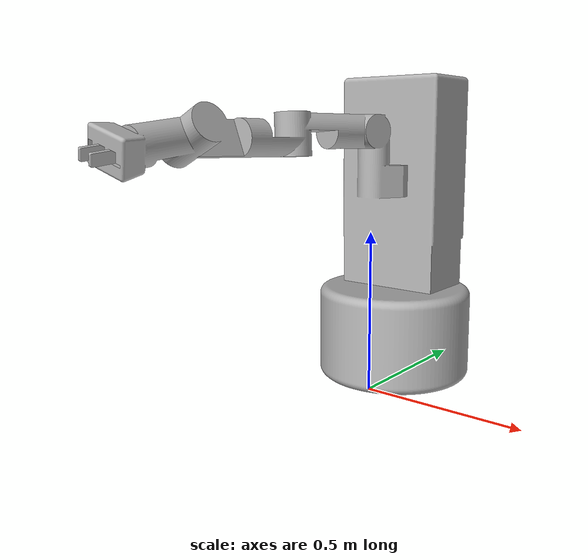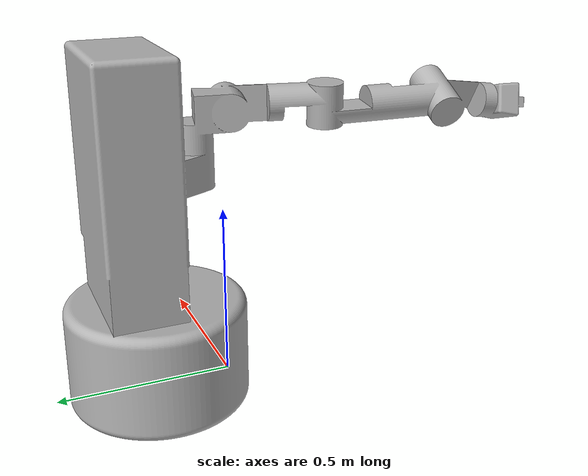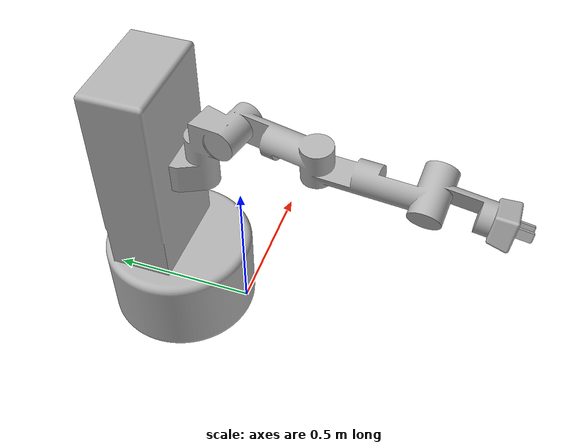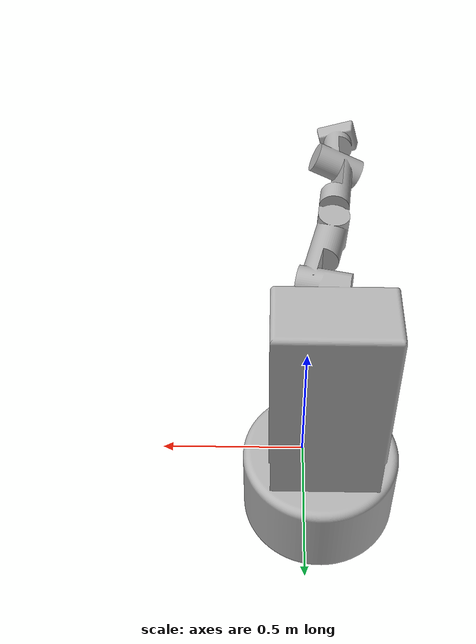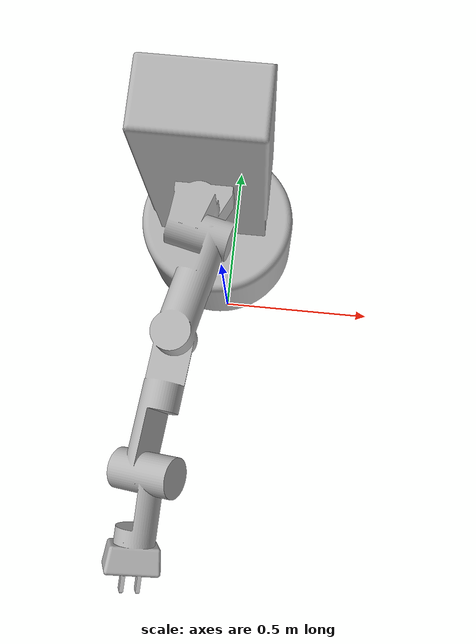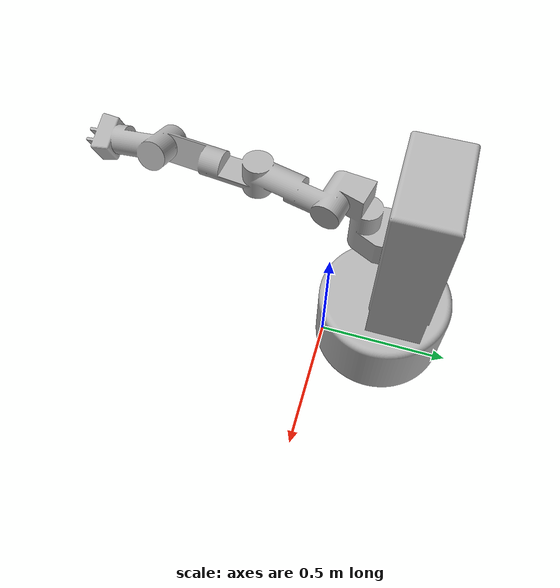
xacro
<?xml version="1.0" ?>
<robot name="assembly" xmlns:xacro="http://www.ros.org/wiki/xacro">

<xacro:include filename="$(find cricball)/urdf/materials.xacro" />
<xacro:include filename="$(find cricball)/urdf/assembly.trans" />
<xacro:include filename="$(find cricball)/urdf/assembly.gazebo" />
<link name="dummy">
   </link>
<link name="base_link">
  <inertial>
    <origin rpy="0 0 0" xyz="-0.051938368359397434 0.19689424962521151 0.3655730227509547"/>
    <mass value="861.8943143893492"/>
    <inertia ixx="97.815129" ixy="-1.205347" ixz="1.258738" iyy="74.989482" iyz="10.595435" izz="44.126236"/>
  </inertial>
  <visual>
    <origin rpy="0 0 0" xyz="0 0 0"/>
    <geometry>
      <mesh filename="package://cricball/meshes/base_link.stl" scale="0.001 0.001 0.001"/>
    </geometry>
    <material name="silver_default"/>
  </visual>
  <collision>
    <origin rpy="0 0 0" xyz="0 0 0"/>
    <geometry>
      <mesh filename="package://cricball/meshes/base_link.stl" scale="0.001 0.001 0.001"/>
    </geometry>
  </collision>
</link>
<joint name="dummy_joint" type="fixed">
     <parent link="dummy"/>
     <child link="base_link"/>
   </joint>

</robot>

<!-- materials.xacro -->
<robot name="assembly" xmlns:xacro="http://www.ros.org/wiki/xacro" >

<material name="silver_default">
  <color rgba="0.700 0.700 0.700 1.000"/>
</material>

</robot>

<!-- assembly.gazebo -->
<robot name="assembly" xmlns:xacro="http://www.ros.org/wiki/xacro" >

<xacro:property name="body_color" value="Gazebo/Silver" />

<gazebo>
  <plugin filename="libgazebo_ros_control.so" name="control"/>
</gazebo>
<gazebo reference="base_link">
  <material>${body_color}</material>
  <mu1>0.2</mu1>
  <mu2>0.2</mu2>
  <selfCollide>true</selfCollide>
  <gravity>true</gravity>
</gazebo>

</robot>
